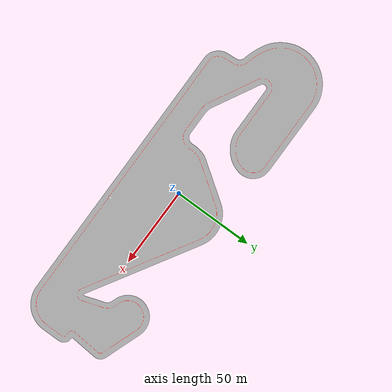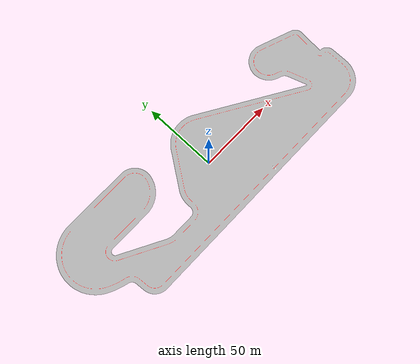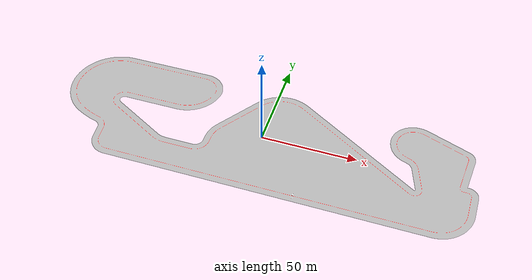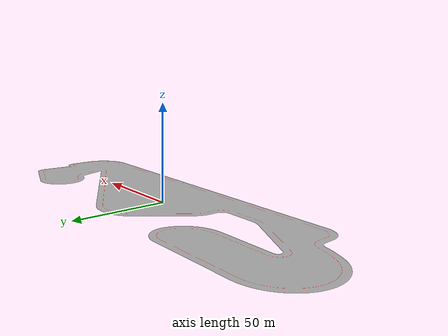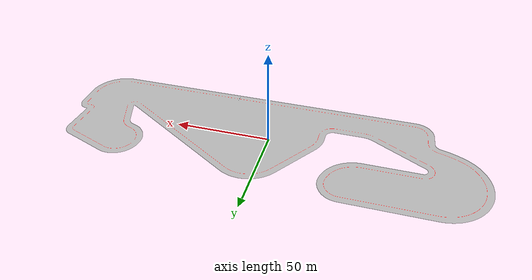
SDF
<?xml version='1.0'?>
<sdf version="1.4">
  <model name="montmelo">
    <static>true</static>
    <link name="montmelo">
      <pose>0 0 0 0 0 0</pose>
      <collision name="collision">
        <geometry>
          <plane>
            <size> 700 500</size>
          </plane>
        </geometry>
      </collision>
      <visual name="visual">
        <geometry>
          <mesh>
            <uri>model://montmelo_line/meshes/montmelo.dae</uri>
          </mesh>
        </geometry>
      </visual>
    </link>
    <link name="pared">
      <collision name="collision">
        <geometry>
          <mesh>
            <uri>model://montmelo_line/meshes/pared.stl</uri>
          </mesh>
        </geometry>
      </collision>
    </link>
  </model>
</sdf>
